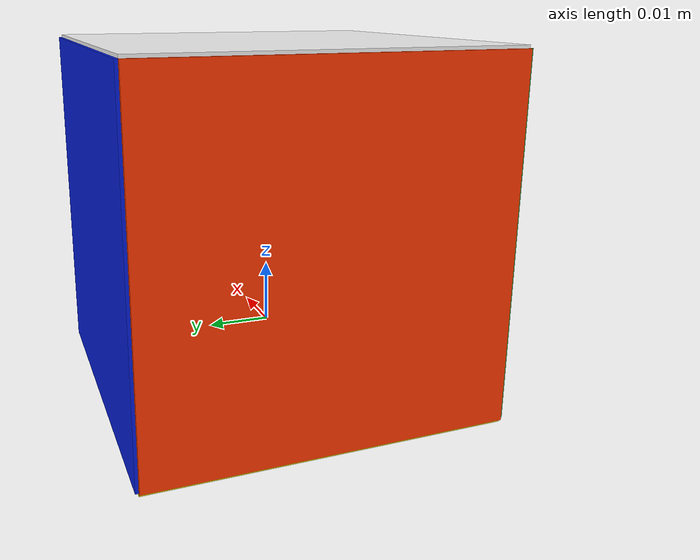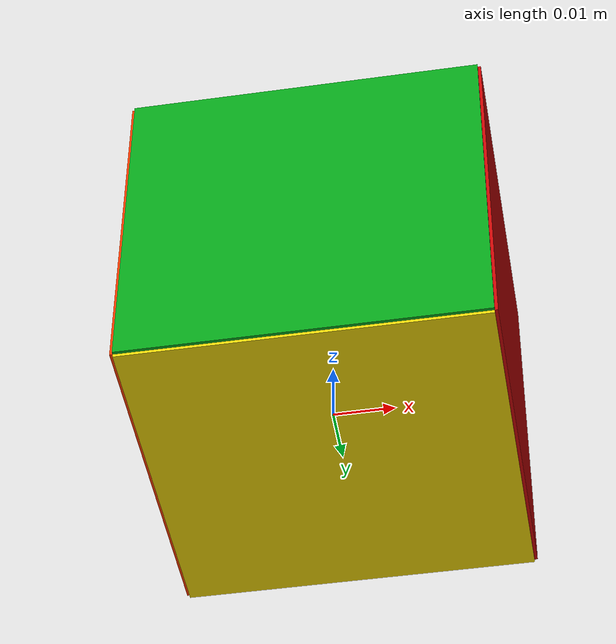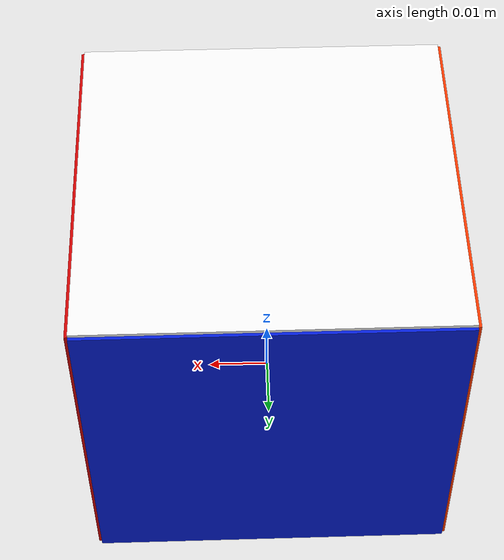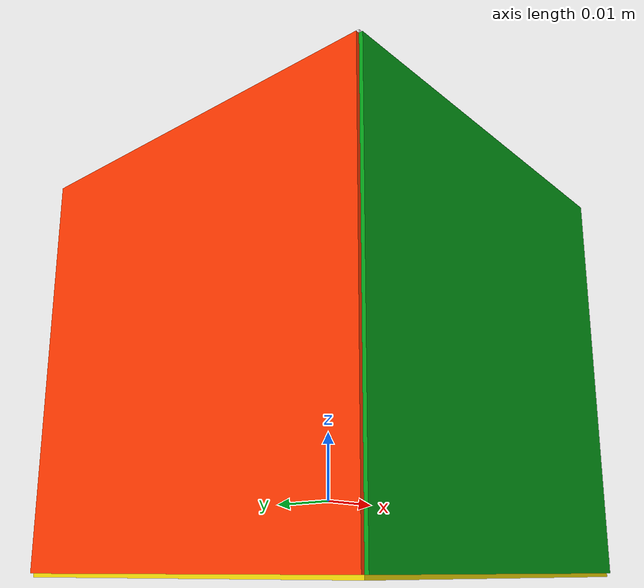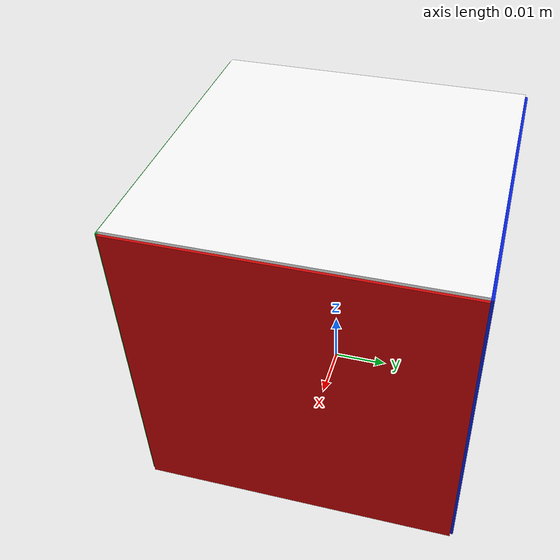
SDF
<?xml version="1.0"?>
<sdf version="1.7">
  <model name="rubiks_static_cube_contact_057">
    <!-- Test-only stationary copy of the canonical 57 mm Rubik collision shape. -->
    <static>true</static>
    <link name="cube_link">
      <pose>0 0 0.0185 0 0 0</pose>
      <collision name="cube_collision">
        <geometry><box><size>0.057 0.057 0.057</size></box></geometry>
        <surface>
          <friction><ode><mu>1.0</mu><mu2>1.0</mu2></ode></friction>
          <bounce><restitution_coefficient>0.0</restitution_coefficient></bounce>
          <contact>
            <collide_without_contact>false</collide_without_contact>
            <ode><max_vel>0.001</max_vel><min_depth>0.00001</min_depth></ode>
          </contact>
        </surface>
        <max_contacts>20</max_contacts>
      </collision>
      <visual name="black_body">
        <geometry><box><size>0.057 0.057 0.057</size></box></geometry>
        <material><ambient>0.005 0.005 0.005 1</ambient><diffuse>0.005 0.005 0.005 1</diffuse><specular>0.05 0.05 0.05 1</specular></material>
      </visual>
      <visual name="face_px_red"><pose>0.02875 0 0 0 0 0</pose><geometry><box><size>0.0005 0.057 0.057</size></box></geometry><material><ambient>0.8 0.02 0.02 1</ambient><diffuse>0.8 0.02 0.02 1</diffuse></material></visual>
      <visual name="face_nx_orange"><pose>-0.02875 0 0 0 0 0</pose><geometry><box><size>0.0005 0.057 0.057</size></box></geometry><material><ambient>1 0.22 0 1</ambient><diffuse>1 0.22 0 1</diffuse></material></visual>
      <visual name="face_py_blue"><pose>0 0.02875 0 0 0 0</pose><geometry><box><size>0.057 0.0005 0.057</size></box></geometry><material><ambient>0.02 0.12 0.85 1</ambient><diffuse>0.02 0.12 0.85 1</diffuse></material></visual>
      <visual name="face_ny_green"><pose>0 -0.02875 0 0 0 0</pose><geometry><box><size>0.057 0.0005 0.057</size></box></geometry><material><ambient>0.02 0.65 0.1 1</ambient><diffuse>0.02 0.65 0.1 1</diffuse></material></visual>
      <visual name="face_pz_white"><pose>0 0 0.02875 0 0 0</pose><geometry><box><size>0.057 0.057 0.0005</size></box></geometry><material><ambient>0.95 0.95 0.95 1</ambient><diffuse>0.95 0.95 0.95 1</diffuse></material></visual>
      <visual name="face_nz_yellow"><pose>0 0 -0.02875 0 0 0</pose><geometry><box><size>0.057 0.057 0.0005</size></box></geometry><material><ambient>0.95 0.85 0.02 1</ambient><diffuse>0.95 0.85 0.02 1</diffuse></material></visual>
      <sensor name="cube_contact_sensor" type="contact">
        <always_on>true</always_on>
        <update_rate>500</update_rate>
        <visualize>false</visualize>
        <contact><collision>cube_collision</collision></contact>
        <plugin name="rubiks_cube_contact_ros" filename="libgazebo_ros_bumper.so">
          <ros>
            <namespace>/rubiks_cube_contact</namespace>
            <argument>bumper_states:=contact_states</argument>
          </ros>
          <frame_name>cube_link</frame_name>
        </plugin>
      </sensor>
    </link>
  </model>
</sdf>
